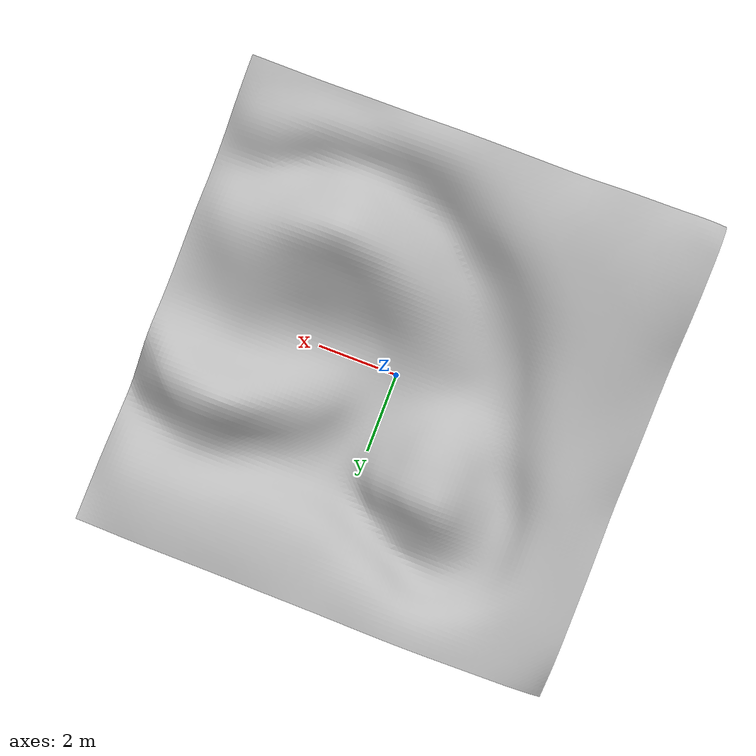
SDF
<?xml version="1.0"?>
<sdf version="1.4">
  <world name="default">
    <include>
      <uri>model://sun</uri>
    </include>
    <include>
      <uri>model://map_desert</uri>
    </include>
  </world>
</sdf>

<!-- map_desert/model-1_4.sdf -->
<sdf version="1.4">
  <model name="map_desert">
    <static>true</static>
    <link name="map_link">
      <pose>0 0 0 0 0 0</pose>
      <collision name="collision">
        <geometry>
          <mesh>
            <uri>model://map_desert/meshes/map_desert.dae</uri>
            <scale>1.0 1.0 1.0</scale>
          </mesh>
        </geometry>
      </collision>
      <visual name="visual">
        <geometry>
          <mesh>
            <uri>model://map_desert/meshes/map_desert.dae</uri>
            <scale>1.0 1.0 1.0</scale>
          </mesh>
        </geometry>
        <material>
          <script>
            <uri>model://map_desert/materials/scripts/map.material</uri>
            <uri>model://map_desert/materials/textures/texture.jpg</uri>
            <name>map_desert/Image</name>
          </script>
        </material>
      </visual>
      <surface>
        <friction>
          <ode>
              <mu>99999999.0</mu>
              <mu2>99999999.0</mu2>
              <fdir1>0 0 0</fdir1>
              <slip1>0</slip1>
              <slip2>0</slip2>
          </ode>
        </friction>
      </surface>
    </link>

  </model>
</sdf>
